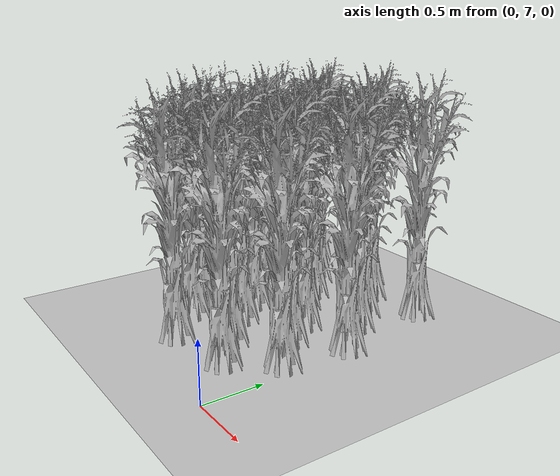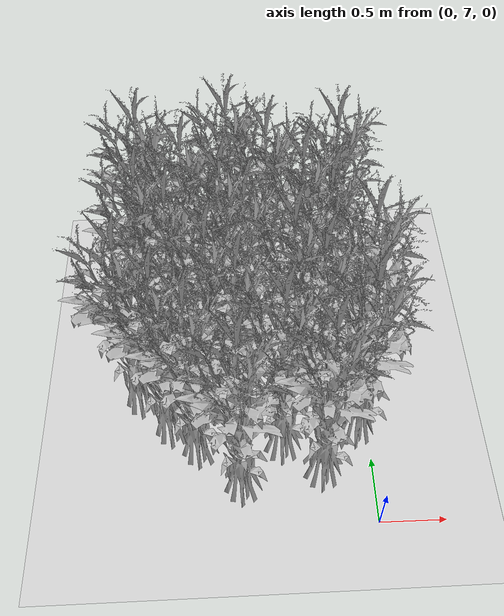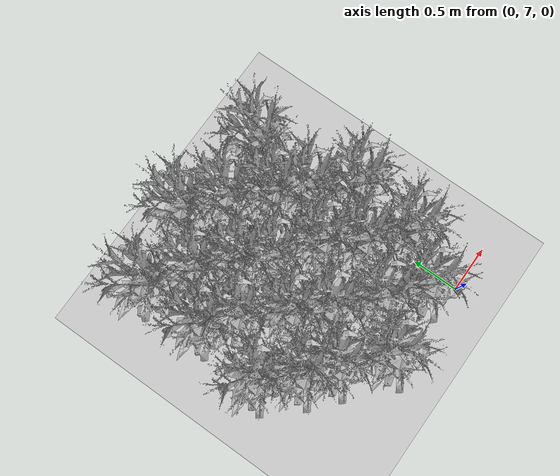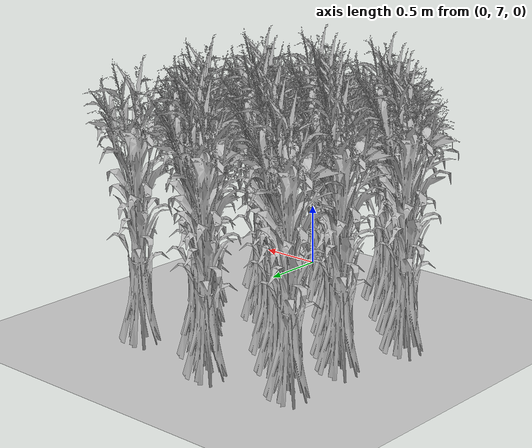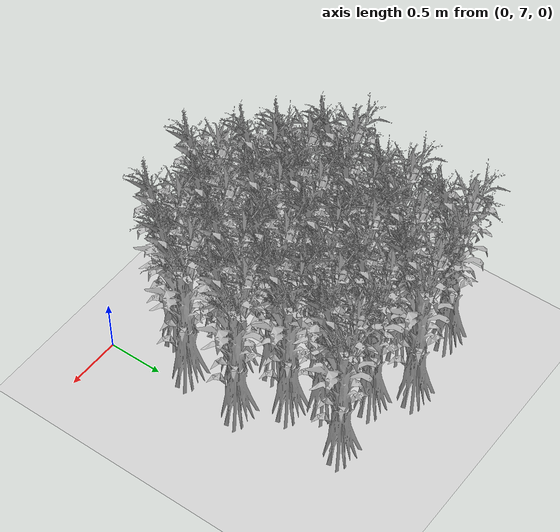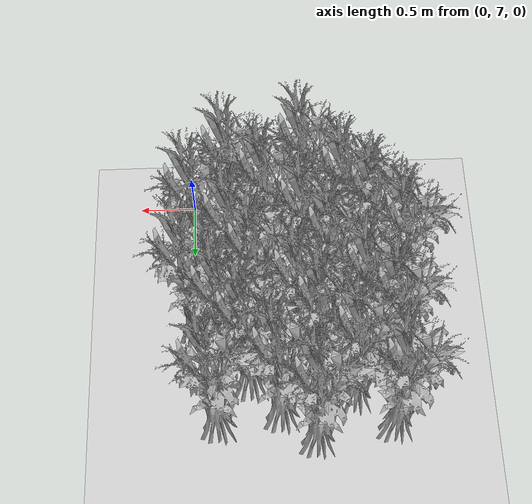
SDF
<sdf version="1.7">
 <world name="farmland_world">
  <model name="ground_plane">
   <static>1</static>
   <link name="link">
    <collision name="collision">
     <geometry><plane><normal>0 0 1</normal><size>40.0 40.0</size></plane></geometry>
     <surface><friction><ode><mu>100</mu><mu2>50</mu2></ode></friction></surface>
    </collision>
    <visual name="visual">
     <cast_shadows>0</cast_shadows>
     <geometry><plane><normal>0 0 1</normal><size>40.0 40.0</size></plane></geometry>
     <material>
      <script><uri>file://media/materials/scripts/gazebo.material</uri><name>Gazebo/Grey</name></script>
     </material>
    </visual>
   </link>
  </model>
  <model name="tree_2_65">
   <static>1</static>
   <link name="link">
    <collision name="collision">
     <geometry><mesh><uri>model://Corn/corn_5p.obj</uri><scale>1 1 1</scale></mesh></geometry>
     <surface><friction><ode><mu>100</mu><mu2>50</mu2></ode></friction></surface>
    </collision>
    <visual name="visual">
     <geometry><mesh><uri>model://Corn/corn_5p.obj</uri><scale>1 1 1</scale></mesh></geometry>
    </visual>
   </link>
   <pose>-0.36942204996899763 7.393646891679938 0 0 0 0</pose>
  </model>
  <model name="tree_2_66">
   <static>1</static>
   <link name="link">
    <collision name="collision">
     <geometry><mesh><uri>model://Corn/corn_5p.obj</uri><scale>1 1 1</scale></mesh></geometry>
     <surface><friction><ode><mu>100</mu><mu2>50</mu2></ode></friction></surface>
    </collision>
    <visual name="visual">
     <geometry><mesh><uri>model://Corn/corn_5p.obj</uri><scale>1 1 1</scale></mesh></geometry>
    </visual>
   </link>
   <pose>-0.6597731043919619 7.625422895160436 0 0 0 0</pose>
  </model>
  <model name="tree_2_67">
   <static>1</static>
   <link name="link">
    <collision name="collision">
     <geometry><mesh><uri>model://Corn/corn_5p.obj</uri><scale>1 1 1</scale></mesh></geometry>
     <surface><friction><ode><mu>100</mu><mu2>50</mu2></ode></friction></surface>
    </collision>
    <visual name="visual">
     <geometry><mesh><uri>model://Corn/corn_5p.obj</uri><scale>1 1 1</scale></mesh></geometry>
    </visual>
   </link>
   <pose>-0.9658286734339893 7.911469747794011 0 0 0 0</pose>
  </model>
  <model name="tree_2_68">
   <static>1</static>
   <link name="link">
    <collision name="collision">
     <geometry><mesh><uri>model://Corn/corn_5p.obj</uri><scale>1 1 1</scale></mesh></geometry>
     <surface><friction><ode><mu>100</mu><mu2>50</mu2></ode></friction></surface>
    </collision>
    <visual name="visual">
     <geometry><mesh><uri>model://Corn/corn_5p.obj</uri><scale>1 1 1</scale></mesh></geometry>
    </visual>
   </link>
   <pose>-1.1624221105436519 8.153411943198787 0 0 0 0</pose>
  </model>
  <model name="tree_2_69">
   <static>1</static>
   <link name="link">
    <collision name="collision">
     <geometry><mesh><uri>model://Corn/corn_5p.obj</uri><scale>1 1 1</scale></mesh></geometry>
     <surface><friction><ode><mu>100</mu><mu2>50</mu2></ode></friction></surface>
    </collision>
    <visual name="visual">
     <geometry><mesh><uri>model://Corn/corn_5p.obj</uri><scale>1 1 1</scale></mesh></geometry>
    </visual>
   </link>
   <pose>-1.4315617293550285 8.477652612518378 0 0 0 0</pose>
  </model>
  <model name="tree_2_70">
   <static>1</static>
   <link name="link">
    <collision name="collision">
     <geometry><mesh><uri>model://Corn/corn_5p.obj</uri><scale>1 1 1</scale></mesh></geometry>
     <surface><friction><ode><mu>100</mu><mu2>50</mu2></ode></friction></surface>
    </collision>
    <visual name="visual">
     <geometry><mesh><uri>model://Corn/corn_5p.obj</uri><scale>1 1 1</scale></mesh></geometry>
    </visual>
   </link>
   <pose>-1.6445801037130559 8.678645767469478 0 0 0 0</pose>
  </model>
  <model name="tree_2_108">
   <static>1</static>
   <link name="link">
    <collision name="collision">
     <geometry><mesh><uri>model://Corn/corn_5p.obj</uri><scale>1 1 1</scale></mesh></geometry>
     <surface><friction><ode><mu>100</mu><mu2>50</mu2></ode></friction></surface>
    </collision>
    <visual name="visual">
     <geometry><mesh><uri>model://Corn/corn_5p.obj</uri><scale>1 1 1</scale></mesh></geometry>
    </visual>
   </link>
   <pose>-0.18726016369771042 9.189943893505854 0 0 0 0</pose>
  </model>
  <model name="tree_2_306">
   <static>1</static>
   <link name="link">
    <collision name="collision">
     <geometry><mesh><uri>model://Corn/corn_5p.obj</uri><scale>1 1 1</scale></mesh></geometry>
     <surface><friction><ode><mu>100</mu><mu2>50</mu2></ode></friction></surface>
    </collision>
    <visual name="visual">
     <geometry><mesh><uri>model://Corn/corn_5p.obj</uri><scale>1 1 1</scale></mesh></geometry>
    </visual>
   </link>
   <pose>-0.9721985451958016 7.308367137200783 0 0 0 0</pose>
  </model>
  <model name="tree_2_307">
   <static>1</static>
   <link name="link">
    <collision name="collision">
     <geometry><mesh><uri>model://Corn/corn_5p.obj</uri><scale>1 1 1</scale></mesh></geometry>
     <surface><friction><ode><mu>100</mu><mu2>50</mu2></ode></friction></surface>
    </collision>
    <visual name="visual">
     <geometry><mesh><uri>model://Corn/corn_5p.obj</uri><scale>1 1 1</scale></mesh></geometry>
    </visual>
   </link>
   <pose>-1.2935534436645688 7.620905889618012 0 0 0 0</pose>
  </model>
  <model name="tree_2_308">
   <static>1</static>
   <link name="link">
    <collision name="collision">
     <geometry><mesh><uri>model://Corn/corn_5p.obj</uri><scale>1 1 1</scale></mesh></geometry>
     <surface><friction><ode><mu>100</mu><mu2>50</mu2></ode></friction></surface>
    </collision>
    <visual name="visual">
     <geometry><mesh><uri>model://Corn/corn_5p.obj</uri><scale>1 1 1</scale></mesh></geometry>
    </visual>
   </link>
   <pose>-1.505150565748562 7.80429383927521 0 0 0 0</pose>
  </model>
  <model name="tree_2_309">
   <static>1</static>
   <link name="link">
    <collision name="collision">
     <geometry><mesh><uri>model://Corn/corn_5p.obj</uri><scale>1 1 1</scale></mesh></geometry>
     <surface><friction><ode><mu>100</mu><mu2>50</mu2></ode></friction></surface>
    </collision>
    <visual name="visual">
     <geometry><mesh><uri>model://Corn/corn_5p.obj</uri><scale>1 1 1</scale></mesh></geometry>
    </visual>
   </link>
   <pose>-1.7480398324228017 8.07649621593838 0 0 0 0</pose>
  </model>
  <model name="tree_2_345">
   <static>1</static>
   <link name="link">
    <collision name="collision">
     <geometry><mesh><uri>model://Corn/corn_5p.obj</uri><scale>1 1 1</scale></mesh></geometry>
     <surface><friction><ode><mu>100</mu><mu2>50</mu2></ode></friction></surface>
    </collision>
    <visual name="visual">
     <geometry><mesh><uri>model://Corn/corn_5p.obj</uri><scale>1 1 1</scale></mesh></geometry>
    </visual>
   </link>
   <pose>-0.08283581375997075 7.7349508260783395 0 0 0 0</pose>
  </model>
  <model name="tree_2_346">
   <static>1</static>
   <link name="link">
    <collision name="collision">
     <geometry><mesh><uri>model://Corn/corn_5p.obj</uri><scale>1 1 1</scale></mesh></geometry>
     <surface><friction><ode><mu>100</mu><mu2>50</mu2></ode></friction></surface>
    </collision>
    <visual name="visual">
     <geometry><mesh><uri>model://Corn/corn_5p.obj</uri><scale>1 1 1</scale></mesh></geometry>
    </visual>
   </link>
   <pose>-0.3846472502661528 8.009462757553745 0 0 0 0</pose>
  </model>
  <model name="tree_2_347">
   <static>1</static>
   <link name="link">
    <collision name="collision">
     <geometry><mesh><uri>model://Corn/corn_5p.obj</uri><scale>1 1 1</scale></mesh></geometry>
     <surface><friction><ode><mu>100</mu><mu2>50</mu2></ode></friction></surface>
    </collision>
    <visual name="visual">
     <geometry><mesh><uri>model://Corn/corn_5p.obj</uri><scale>1 1 1</scale></mesh></geometry>
    </visual>
   </link>
   <pose>-0.5620147868306604 8.270801698812999 0 0 0 0</pose>
  </model>
  <model name="tree_2_348">
   <static>1</static>
   <link name="link">
    <collision name="collision">
     <geometry><mesh><uri>model://Corn/corn_5p.obj</uri><scale>1 1 1</scale></mesh></geometry>
     <surface><friction><ode><mu>100</mu><mu2>50</mu2></ode></friction></surface>
    </collision>
    <visual name="visual">
     <geometry><mesh><uri>model://Corn/corn_5p.obj</uri><scale>1 1 1</scale></mesh></geometry>
    </visual>
   </link>
   <pose>-0.8953882186378832 8.509015863085253 0 0 0 0</pose>
  </model>
  <model name="tree_2_349">
   <static>1</static>
   <link name="link">
    <collision name="collision">
     <geometry><mesh><uri>model://Corn/corn_5p.obj</uri><scale>1 1 1</scale></mesh></geometry>
     <surface><friction><ode><mu>100</mu><mu2>50</mu2></ode></friction></surface>
    </collision>
    <visual name="visual">
     <geometry><mesh><uri>model://Corn/corn_5p.obj</uri><scale>1 1 1</scale></mesh></geometry>
    </visual>
   </link>
   <pose>-1.0602411217251084 8.724046453458646 0 0 0 0</pose>
  </model>
  <model name="tree_2_350">
   <static>1</static>
   <link name="link">
    <collision name="collision">
     <geometry><mesh><uri>model://Corn/corn_5p.obj</uri><scale>1 1 1</scale></mesh></geometry>
     <surface><friction><ode><mu>100</mu><mu2>50</mu2></ode></friction></surface>
    </collision>
    <visual name="visual">
     <geometry><mesh><uri>model://Corn/corn_5p.obj</uri><scale>1 1 1</scale></mesh></geometry>
    </visual>
   </link>
   <pose>-1.3353545638477269 8.973114968568371 0 0 0 0</pose>
  </model>
  <model name="tree_2_351">
   <static>1</static>
   <link name="link">
    <collision name="collision">
     <geometry><mesh><uri>model://Corn/corn_5p.obj</uri><scale>1 1 1</scale></mesh></geometry>
     <surface><friction><ode><mu>100</mu><mu2>50</mu2></ode></friction></surface>
    </collision>
    <visual name="visual">
     <geometry><mesh><uri>model://Corn/corn_5p.obj</uri><scale>1 1 1</scale></mesh></geometry>
    </visual>
   </link>
   <pose>-1.6633495113543475 9.23831009386285 0 0 0 0</pose>
  </model>
  <model name="tree_2_386">
   <static>1</static>
   <link name="link">
    <collision name="collision">
     <geometry><mesh><uri>model://Corn/corn_5p.obj</uri><scale>1 1 1</scale></mesh></geometry>
     <surface><friction><ode><mu>100</mu><mu2>50</mu2></ode></friction></surface>
    </collision>
    <visual name="visual">
     <geometry><mesh><uri>model://Corn/corn_5p.obj</uri><scale>1 1 1</scale></mesh></geometry>
    </visual>
   </link>
   <pose>-0.014398357644770644 8.296055813763857 0 0 0 0</pose>
  </model>
  <model name="tree_2_387">
   <static>1</static>
   <link name="link">
    <collision name="collision">
     <geometry><mesh><uri>model://Corn/corn_5p.obj</uri><scale>1 1 1</scale></mesh></geometry>
     <surface><friction><ode><mu>100</mu><mu2>50</mu2></ode></friction></surface>
    </collision>
    <visual name="visual">
     <geometry><mesh><uri>model://Corn/corn_5p.obj</uri><scale>1 1 1</scale></mesh></geometry>
    </visual>
   </link>
   <pose>-0.2872033439868158 8.610868629389326 0 0 0 0</pose>
  </model>
  <model name="tree_2_388">
   <static>1</static>
   <link name="link">
    <collision name="collision">
     <geometry><mesh><uri>model://Corn/corn_5p.obj</uri><scale>1 1 1</scale></mesh></geometry>
     <surface><friction><ode><mu>100</mu><mu2>50</mu2></ode></friction></surface>
    </collision>
    <visual name="visual">
     <geometry><mesh><uri>model://Corn/corn_5p.obj</uri><scale>1 1 1</scale></mesh></geometry>
    </visual>
   </link>
   <pose>-0.4688148599500123 8.828447784940316 0 0 0 0</pose>
  </model>
  <model name="tree_2_389">
   <static>1</static>
   <link name="link">
    <collision name="collision">
     <geometry><mesh><uri>model://Corn/corn_5p.obj</uri><scale>1 1 1</scale></mesh></geometry>
     <surface><friction><ode><mu>100</mu><mu2>50</mu2></ode></friction></surface>
    </collision>
    <visual name="visual">
     <geometry><mesh><uri>model://Corn/corn_5p.obj</uri><scale>1 1 1</scale></mesh></geometry>
    </visual>
   </link>
   <pose>-0.7193190565145898 9.119018391667382 0 0 0 0</pose>
  </model>
  <model name="tree_2_390">
   <static>1</static>
   <link name="link">
    <collision name="collision">
     <geometry><mesh><uri>model://Corn/corn_5p.obj</uri><scale>1 1 1</scale></mesh></geometry>
     <surface><friction><ode><mu>100</mu><mu2>50</mu2></ode></friction></surface>
    </collision>
    <visual name="visual">
     <geometry><mesh><uri>model://Corn/corn_5p.obj</uri><scale>1 1 1</scale></mesh></geometry>
    </visual>
   </link>
   <pose>-1.0075035476020822 9.349124810036068 0 0 0 0</pose>
  </model>
 </world>
</sdf>
